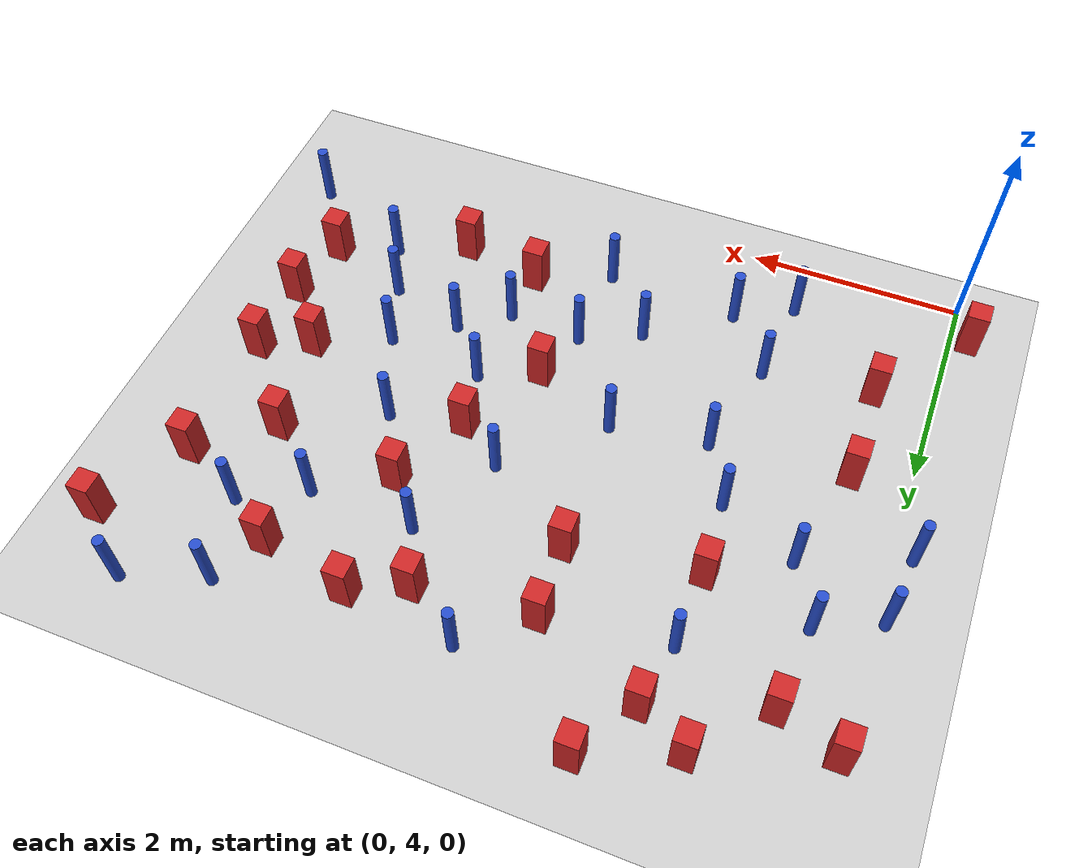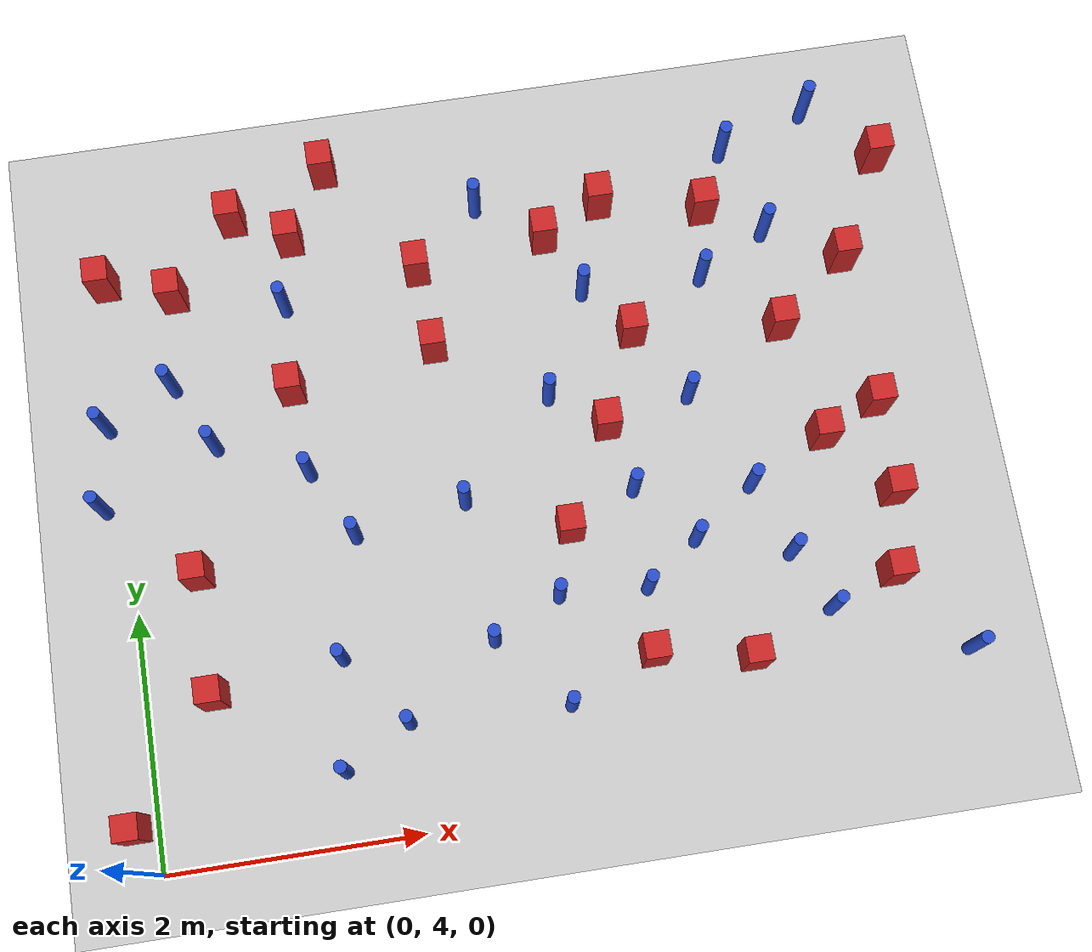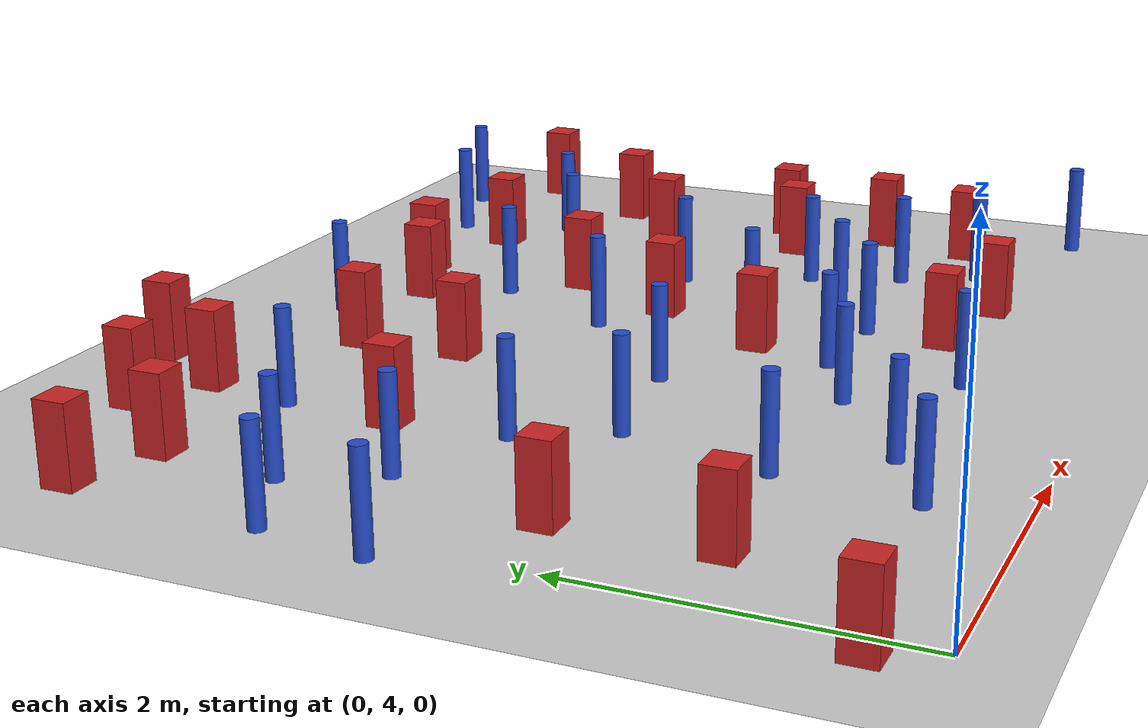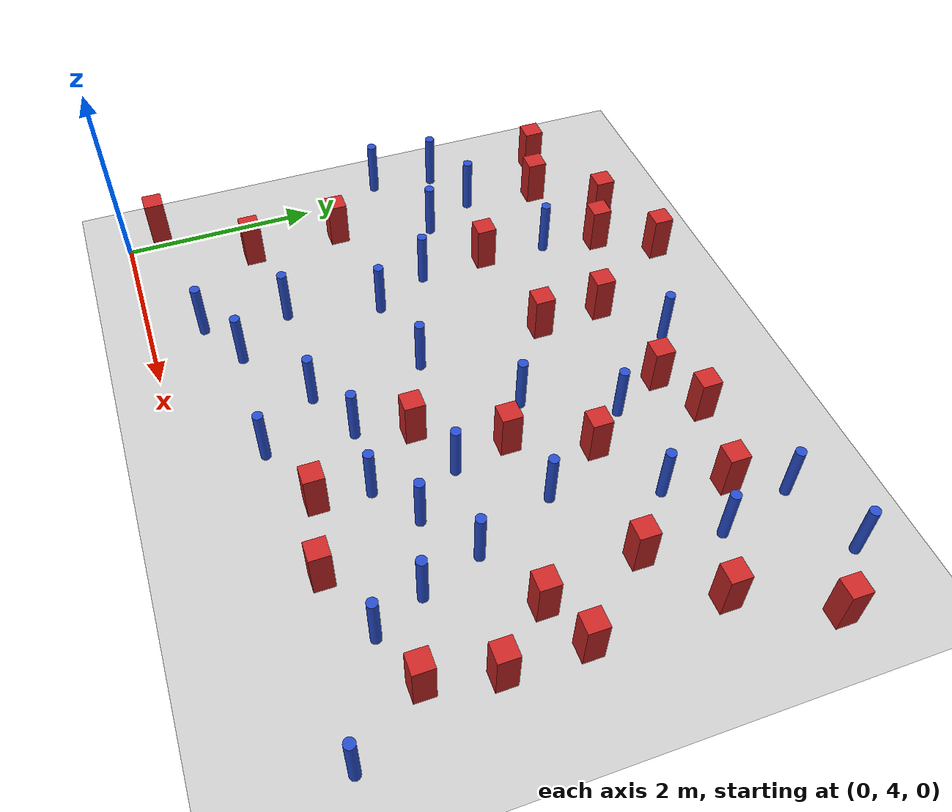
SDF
<sdf version="1.6">
 <world name="default">
  <model name="ground_plane">
   <static>1</static>
   <link name="link">
    <collision name="collision">
     <geometry><plane><normal>0 0 1</normal><size>100 100</size></plane></geometry>
     <surface><friction><ode><mu>100</mu><mu2>50</mu2></ode></friction></surface>
    </collision>
    <visual name="visual">
     <cast_shadows>0</cast_shadows>
     <geometry><plane><normal>0 0 1</normal><size>100 100</size></plane></geometry>
     <material>
      <ambient>1.0 1.0 1.0 1.0</ambient>
      <diffuse>0.8 0.8 0.8 1.0</diffuse>
      <specular>0.01 0.01 0.01 1.000000</specular>
     </material>
    </visual>
   </link>
  </model>
  <model name="pole_obstacle0">
   <static>true</static>
   <pose>5.38879839555 8.36669542254 7.38925637345e-09 -8.471706928e-08 1.24976765081e-08 -1.74513093015e-07</pose>
   <link name="link">
    <pose>0 0 0.3 0 -0 0</pose>
    <inertial>
     <mass>1</mass>
     <inertia><ixx>0.145833</ixx><ixy>0</ixy><ixz>0</ixz><iyy>0.145833</iyy><iyz>0</iyz><izz>0.125</izz></inertia>
    </inertial>
    <collision name="collision">
     <geometry><cylinder><radius>0.05</radius><length>.6</length></cylinder></geometry>
    </collision>
    <visual name="visual">
     <geometry><cylinder><radius>0.05</radius><length>.6</length></cylinder></geometry>
     <material>
      <script><name>Gazebo/Blue</name><uri>file://media/materials/scripts/gazebo.material</uri></script>
     </material>
    </visual>
   </link>
  </model>
  <model name="square_post_obstacle2">
   <static>true</static>
   <pose>0.536799220432 5.27281515799 1.91545236811e-07 -7.35059704564e-06 1.12565212e-07 2.39332434364e-05</pose>
   <link name="link">
    <pose>0 0 0.25 0 -0 0</pose>
    <inertial>
     <mass>100</mass>
     <inertia>
      <ixx>0.166667</ixx>
      <ixy>0</ixy>
      <ixz>0</ixz>
      <iyy>0.166667</iyy>
      <iyz>0</iyz>
      <izz>0.166667</izz>
     </inertia>
    </inertial>
    <collision name="collision"><geometry><box><size>.2 .2 .5</size></box></geometry></collision>
    <visual name="visual">
     <geometry><box><size>.2 .2 .5</size></box></geometry>
     <material>
      <script><name>Gazebo/Red</name><uri>file://media/materials/scripts/gazebo.material</uri></script>
     </material>
    </visual>
   </link>
  </model>
  <model name="pole_obstacle6">
   <static>true</static>
   <pose>4.54309305607 7.07931227956 7.38925637345e-09 -8.47170692796e-08 1.24976764786e-08 -1.74513093032e-07</pose>
   <link name="link">
    <pose>0 0 0.3 0 -0 0</pose>
    <inertial>
     <mass>1</mass>
     <inertia><ixx>0.145833</ixx><ixy>0</ixy><ixz>0</ixz><iyy>0.145833</iyy><iyz>0</iyz><izz>0.125</izz></inertia>
    </inertial>
    <collision name="collision">
     <geometry><cylinder><radius>0.05</radius><length>.6</length></cylinder></geometry>
    </collision>
    <visual name="visual">
     <geometry><cylinder><radius>0.05</radius><length>.6</length></cylinder></geometry>
     <material>
      <script><name>Gazebo/Blue</name><uri>file://media/materials/scripts/gazebo.material</uri></script>
     </material>
    </visual>
   </link>
  </model>
  <model name="pole_obstacle16">
   <static>true</static>
   <pose>2.65486659506 6.48654705687 7.38925637345e-09 -8.47170692798e-08 1.24976765033e-08 -1.74513093019e-07</pose>
   <link name="link">
    <pose>0 0 0.3 0 -0 0</pose>
    <inertial>
     <mass>1</mass>
     <inertia><ixx>0.145833</ixx><ixy>0</ixy><ixz>0</ixz><iyy>0.145833</iyy><iyz>0</iyz><izz>0.125</izz></inertia>
    </inertial>
    <collision name="collision">
     <geometry><cylinder><radius>0.05</radius><length>.6</length></cylinder></geometry>
    </collision>
    <visual name="visual">
     <geometry><cylinder><radius>0.05</radius><length>.6</length></cylinder></geometry>
     <material>
      <script><name>Gazebo/Blue</name><uri>file://media/materials/scripts/gazebo.material</uri></script>
     </material>
    </visual>
   </link>
  </model>
  <model name="pole_obstacle27">
   <static>true</static>
   <pose>1.54337196194 5.40097151856 7.38925637345e-09 -8.47170692799e-08 1.24976765033e-08 -1.74513093018e-07</pose>
   <link name="link">
    <pose>0 0 0.3 0 -0 0</pose>
    <inertial>
     <mass>1</mass>
     <inertia><ixx>0.145833</ixx><ixy>0</ixy><ixz>0</ixz><iyy>0.145833</iyy><iyz>0</iyz><izz>0.125</izz></inertia>
    </inertial>
    <collision name="collision">
     <geometry><cylinder><radius>0.05</radius><length>.6</length></cylinder></geometry>
    </collision>
    <visual name="visual">
     <geometry><cylinder><radius>0.05</radius><length>.6</length></cylinder></geometry>
     <material>
      <script><name>Gazebo/Blue</name><uri>file://media/materials/scripts/gazebo.material</uri></script>
     </material>
    </visual>
   </link>
  </model>
  <model name="square_post_obstacle33">
   <static>true</static>
   <pose>1.1004594954 9.1304392188 1.91545236811e-07 -7.35059704564e-06 1.12565212e-07 2.39332434364e-05</pose>
   <link name="link">
    <pose>0 0 0.25 0 -0 0</pose>
    <inertial>
     <mass>100</mass>
     <inertia>
      <ixx>0.166667</ixx>
      <ixy>0</ixy>
      <ixz>0</ixz>
      <iyy>0.166667</iyy>
      <iyz>0</iyz>
      <izz>0.166667</izz>
     </inertia>
    </inertial>
    <collision name="collision"><geometry><box><size>.2 .2 .5</size></box></geometry></collision>
    <visual name="visual">
     <geometry><box><size>.2 .2 .5</size></box></geometry>
     <material>
      <script><name>Gazebo/Red</name><uri>file://media/materials/scripts/gazebo.material</uri></script>
     </material>
    </visual>
   </link>
  </model>
  <model name="pole_obstacle30">
   <static>true</static>
   <pose>3.96328516001 5.59237756743 7.38925637345e-09 -8.47170692798e-08 1.24976764915e-08 -1.74513093026e-07</pose>
   <link name="link">
    <pose>0 0 0.3 0 -0 0</pose>
    <inertial>
     <mass>1</mass>
     <inertia><ixx>0.145833</ixx><ixy>0</ixy><ixz>0</ixz><iyy>0.145833</iyy><iyz>0</iyz><izz>0.125</izz></inertia>
    </inertial>
    <collision name="collision">
     <geometry><cylinder><radius>0.05</radius><length>.6</length></cylinder></geometry>
    </collision>
    <visual name="visual">
     <geometry><cylinder><radius>0.05</radius><length>.6</length></cylinder></geometry>
     <material>
      <script><name>Gazebo/Blue</name><uri>file://media/materials/scripts/gazebo.material</uri></script>
     </material>
    </visual>
   </link>
  </model>
  <model name="pole_obstacle35">
   <static>true</static>
   <pose>5.34245085465 5.2171930424 7.38925637345e-09 -8.47170692796e-08 1.24976764786e-08 -1.74513093032e-07</pose>
   <link name="link">
    <pose>0 0 0.3 0 -0 0</pose>
    <inertial>
     <mass>1</mass>
     <inertia><ixx>0.145833</ixx><ixy>0</ixy><ixz>0</ixz><iyy>0.145833</iyy><iyz>0</iyz><izz>0.125</izz></inertia>
    </inertial>
    <collision name="collision">
     <geometry><cylinder><radius>0.05</radius><length>.6</length></cylinder></geometry>
    </collision>
    <visual name="visual">
     <geometry><cylinder><radius>0.05</radius><length>.6</length></cylinder></geometry>
     <material>
      <script><name>Gazebo/Blue</name><uri>file://media/materials/scripts/gazebo.material</uri></script>
     </material>
    </visual>
   </link>
  </model>
  <model name="square_post_obstacle37">
   <static>true</static>
   <pose>6.41477944838 8.88996979228 1.91545236811e-07 -7.35059704564e-06 1.12565212e-07 2.39332434364e-05</pose>
   <link name="link">
    <pose>0 0 0.25 0 -0 0</pose>
    <inertial>
     <mass>100</mass>
     <inertia>
      <ixx>0.166667</ixx>
      <ixy>0</ixy>
      <ixz>0</ixz>
      <iyy>0.166667</iyy>
      <iyz>0</iyz>
      <izz>0.166667</izz>
     </inertia>
    </inertial>
    <collision name="collision"><geometry><box><size>.2 .2 .5</size></box></geometry></collision>
    <visual name="visual">
     <geometry><box><size>.2 .2 .5</size></box></geometry>
     <material>
      <script><name>Gazebo/Red</name><uri>file://media/materials/scripts/gazebo.material</uri></script>
     </material>
    </visual>
   </link>
  </model>
  <model name="pole_obstacle38">
   <static>true</static>
   <pose>1.98644280753 4.83673088057 7.38925637345e-09 -8.471706928e-08 1.24976765202e-08 -1.7451309301e-07</pose>
   <link name="link">
    <pose>0 0 0.3 0 -0 0</pose>
    <inertial>
     <mass>1</mass>
     <inertia><ixx>0.145833</ixx><ixy>0</ixy><ixz>0</ixz><iyy>0.145833</iyy><iyz>0</iyz><izz>0.125</izz></inertia>
    </inertial>
    <collision name="collision">
     <geometry><cylinder><radius>0.05</radius><length>.6</length></cylinder></geometry>
    </collision>
    <visual name="visual">
     <geometry><cylinder><radius>0.05</radius><length>.6</length></cylinder></geometry>
     <material>
      <script><name>Gazebo/Blue</name><uri>file://media/materials/scripts/gazebo.material</uri></script>
     </material>
    </visual>
   </link>
  </model>
  <model name="square_post_obstacle38">
   <static>true</static>
   <pose>1.41443566055 7.61321873721 1.91545236811e-07 -7.35059704564e-06 1.12565212e-07 2.39332434364e-05</pose>
   <link name="link">
    <pose>0 0 0.25 0 -0 0</pose>
    <inertial>
     <mass>100</mass>
     <inertia>
      <ixx>0.166667</ixx>
      <ixy>0</ixy>
      <ixz>0</ixz>
      <iyy>0.166667</iyy>
      <iyz>0</iyz>
      <izz>0.166667</izz>
     </inertia>
    </inertial>
    <collision name="collision"><geometry><box><size>.2 .2 .5</size></box></geometry></collision>
    <visual name="visual">
     <geometry><box><size>.2 .2 .5</size></box></geometry>
     <material>
      <script><name>Gazebo/Red</name><uri>file://media/materials/scripts/gazebo.material</uri></script>
     </material>
    </visual>
   </link>
  </model>
  <model name="square_post_obstacle47">
   <static>true</static>
   <pose>0.0110091717661 8.7246706072 1.91545236811e-07 -7.35059704564e-06 1.12565212e-07 2.39332434364e-05</pose>
   <link name="link">
    <pose>0 0 0.25 0 -0 0</pose>
    <inertial>
     <mass>100</mass>
     <inertia>
      <ixx>0.166667</ixx>
      <ixy>0</ixy>
      <ixz>0</ixz>
      <iyy>0.166667</iyy>
      <iyz>0</iyz>
      <izz>0.166667</izz>
     </inertia>
    </inertial>
    <collision name="collision"><geometry><box><size>.2 .2 .5</size></box></geometry></collision>
    <visual name="visual">
     <geometry><box><size>.2 .2 .5</size></box></geometry>
     <material>
      <script><name>Gazebo/Red</name><uri>file://media/materials/scripts/gazebo.material</uri></script>
     </material>
    </visual>
   </link>
  </model>
  <model name="pole_obstacle48">
   <static>true</static>
   <pose>3.23181660423 4.78495591105 7.38925637345e-09 -8.47170692798e-08 1.24976765033e-08 -1.74513093019e-07</pose>
   <link name="link">
    <pose>0 0 0.3 0 -0 0</pose>
    <inertial>
     <mass>1</mass>
     <inertia><ixx>0.145833</ixx><ixy>0</ixy><ixz>0</ixz><iyy>0.145833</iyy><iyz>0</iyz><izz>0.125</izz></inertia>
    </inertial>
    <collision name="collision">
     <geometry><cylinder><radius>0.05</radius><length>.6</length></cylinder></geometry>
    </collision>
    <visual name="visual">
     <geometry><cylinder><radius>0.05</radius><length>.6</length></cylinder></geometry>
     <material>
      <script><name>Gazebo/Blue</name><uri>file://media/materials/scripts/gazebo.material</uri></script>
     </material>
    </visual>
   </link>
  </model>
  <model name="pole_obstacle49">
   <static>true</static>
   <pose>4.90130664667 6.2775078345 7.38925637345e-09 -8.47170692796e-08 1.24976764786e-08 -1.74513093032e-07</pose>
   <link name="link">
    <pose>0 0 0.3 0 -0 0</pose>
    <inertial>
     <mass>1</mass>
     <inertia><ixx>0.145833</ixx><ixy>0</ixy><ixz>0</ixz><iyy>0.145833</iyy><iyz>0</iyz><izz>0.125</izz></inertia>
    </inertial>
    <collision name="collision">
     <geometry><cylinder><radius>0.05</radius><length>.6</length></cylinder></geometry>
    </collision>
    <visual name="visual">
     <geometry><cylinder><radius>0.05</radius><length>.6</length></cylinder></geometry>
     <material>
      <script><name>Gazebo/Blue</name><uri>file://media/materials/scripts/gazebo.material</uri></script>
     </material>
    </visual>
   </link>
  </model>
  <model name="square_post_obstacle49">
   <static>true</static>
   <pose>4.18138463505 7.68231442433 1.91545236811e-07 -7.35059704564e-06 1.12565212e-07 2.39332434364e-05</pose>
   <link name="link">
    <pose>0 0 0.25 0 -0 0</pose>
    <inertial>
     <mass>100</mass>
     <inertia>
      <ixx>0.166667</ixx>
      <ixy>0</ixy>
      <ixz>0</ixz>
      <iyy>0.166667</iyy>
      <iyz>0</iyz>
      <izz>0.166667</izz>
     </inertia>
    </inertial>
    <collision name="collision"><geometry><box><size>.2 .2 .5</size></box></geometry></collision>
    <visual name="visual">
     <geometry><box><size>.2 .2 .5</size></box></geometry>
     <material>
      <script><name>Gazebo/Red</name><uri>file://media/materials/scripts/gazebo.material</uri></script>
     </material>
    </visual>
   </link>
  </model>
  <model name="pole_obstacle53">
   <static>true</static>
   <pose>2.72183247384 5.36527266754 7.38925637345e-09 -8.47170692798e-08 1.24976765033e-08 -1.74513093019e-07</pose>
   <link name="link">
    <pose>0 0 0.3 0 -0 0</pose>
    <inertial>
     <mass>1</mass>
     <inertia><ixx>0.145833</ixx><ixy>0</ixy><ixz>0</ixz><iyy>0.145833</iyy><iyz>0</iyz><izz>0.125</izz></inertia>
    </inertial>
    <collision name="collision">
     <geometry><cylinder><radius>0.05</radius><length>.6</length></cylinder></geometry>
    </collision>
    <visual name="visual">
     <geometry><cylinder><radius>0.05</radius><length>.6</length></cylinder></geometry>
     <material>
      <script><name>Gazebo/Blue</name><uri>file://media/materials/scripts/gazebo.material</uri></script>
     </material>
    </visual>
   </link>
  </model>
  <model name="square_post_obstacle58">
   <static>true</static>
   <pose>3.60351716718 8.5957478818 1.91545236811e-07 -7.35059704564e-06 1.12565212e-07 2.39332434364e-05</pose>
   <link name="link">
    <pose>0 0 0.25 0 -0 0</pose>
    <inertial>
     <mass>100</mass>
     <inertia>
      <ixx>0.166667</ixx>
      <ixy>0</ixy>
      <ixz>0</ixz>
      <iyy>0.166667</iyy>
      <iyz>0</iyz>
      <izz>0.166667</izz>
     </inertia>
    </inertial>
    <collision name="collision"><geometry><box><size>.2 .2 .5</size></box></geometry></collision>
    <visual name="visual">
     <geometry><box><size>.2 .2 .5</size></box></geometry>
     <material>
      <script><name>Gazebo/Red</name><uri>file://media/materials/scripts/gazebo.material</uri></script>
     </material>
    </visual>
   </link>
  </model>
  <model name="pole_obstacle58">
   <static>true</static>
   <pose>5.17714366487 9.11898467634 7.38925637345e-09 -8.471706928e-08 1.24976765081e-08 -1.74513093015e-07</pose>
   <link name="link">
    <pose>0 0 0.3 0 -0 0</pose>
    <inertial>
     <mass>1</mass>
     <inertia><ixx>0.145833</ixx><ixy>0</ixy><ixz>0</ixz><iyy>0.145833</iyy><iyz>0</iyz><izz>0.125</izz></inertia>
    </inertial>
    <collision name="collision">
     <geometry><cylinder><radius>0.05</radius><length>.6</length></cylinder></geometry>
    </collision>
    <visual name="visual">
     <geometry><cylinder><radius>0.05</radius><length>.6</length></cylinder></geometry>
     <material>
      <script><name>Gazebo/Blue</name><uri>file://media/materials/scripts/gazebo.material</uri></script>
     </material>
    </visual>
   </link>
  </model>
  <model name="square_post_obstacle62">
   <static>true</static>
   <pose>2.5420085227 8.47117893151 1.91545236811e-07 -7.35059704564e-06 1.12565212e-07 2.39332434364e-05</pose>
   <link name="link">
    <pose>0 0 0.25 0 -0 0</pose>
    <inertial>
     <mass>100</mass>
     <inertia>
      <ixx>0.166667</ixx>
      <ixy>0</ixy>
      <ixz>0</ixz>
      <iyy>0.166667</iyy>
      <iyz>0</iyz>
      <izz>0.166667</izz>
     </inertia>
    </inertial>
    <collision name="collision"><geometry><box><size>.2 .2 .5</size></box></geometry></collision>
    <visual name="visual">
     <geometry><box><size>.2 .2 .5</size></box></geometry>
     <material>
      <script><name>Gazebo/Red</name><uri>file://media/materials/scripts/gazebo.material</uri></script>
     </material>
    </visual>
   </link>
  </model>
  <model name="pole_obstacle61">
   <static>true</static>
   <pose>1.44120581217 8.30787787056 7.38925637345e-09 -8.47170692798e-08 1.24976764881e-08 -1.74513093027e-07</pose>
   <link name="link">
    <pose>0 0 0.3 0 -0 0</pose>
    <inertial>
     <mass>1</mass>
     <inertia><ixx>0.145833</ixx><ixy>0</ixy><ixz>0</ixz><iyy>0.145833</iyy><iyz>0</iyz><izz>0.125</izz></inertia>
    </inertial>
    <collision name="collision">
     <geometry><cylinder><radius>0.05</radius><length>.6</length></cylinder></geometry>
    </collision>
    <visual name="visual">
     <geometry><cylinder><radius>0.05</radius><length>.6</length></cylinder></geometry>
     <material>
      <script><name>Gazebo/Blue</name><uri>file://media/materials/scripts/gazebo.material</uri></script>
     </material>
    </visual>
   </link>
  </model>
  <model name="square_post_obstacle65">
   <static>true</static>
   <pose>2.58540721505 7.79565693337 1.91545236811e-07 -7.35059704564e-06 1.12565212e-07 2.39332434364e-05</pose>
   <link name="link">
    <pose>0 0 0.25 0 -0 0</pose>
    <inertial>
     <mass>100</mass>
     <inertia>
      <ixx>0.166667</ixx>
      <ixy>0</ixy>
      <ixz>0</ixz>
      <iyy>0.166667</iyy>
      <iyz>0</iyz>
      <izz>0.166667</izz>
     </inertia>
    </inertial>
    <collision name="collision"><geometry><box><size>.2 .2 .5</size></box></geometry></collision>
    <visual name="visual">
     <geometry><box><size>.2 .2 .5</size></box></geometry>
     <material>
      <script><name>Gazebo/Red</name><uri>file://media/materials/scripts/gazebo.material</uri></script>
     </material>
    </visual>
   </link>
  </model>
  <model name="pole_obstacle65">
   <static>true</static>
   <pose>-0.161952074228 6.84530537255 7.38925637345e-09 -8.47170692799e-08 1.24976765043e-08 -1.74513093019e-07</pose>
   <link name="link">
    <pose>0 0 0.3 0 -0 0</pose>
    <inertial>
     <mass>1</mass>
     <inertia><ixx>0.145833</ixx><ixy>0</ixy><ixz>0</ixz><iyy>0.145833</iyy><iyz>0</iyz><izz>0.125</izz></inertia>
    </inertial>
    <collision name="collision">
     <geometry><cylinder><radius>0.05</radius><length>.6</length></cylinder></geometry>
    </collision>
    <visual name="visual">
     <geometry><cylinder><radius>0.05</radius><length>.6</length></cylinder></geometry>
     <material>
      <script><name>Gazebo/Blue</name><uri>file://media/materials/scripts/gazebo.material</uri></script>
     </material>
    </visual>
   </link>
  </model>
  <model name="pole_obstacle66">
   <static>true</static>
   <pose>0.758773156314 7.2256268469 7.38925637345e-09 -8.471706928e-08 1.24976765086e-08 -1.74513093015e-07</pose>
   <link name="link">
    <pose>0 0 0.3 0 -0 0</pose>
    <inertial>
     <mass>1</mass>
     <inertia><ixx>0.145833</ixx><ixy>0</ixy><ixz>0</ixz><iyy>0.145833</iyy><iyz>0</iyz><izz>0.125</izz></inertia>
    </inertial>
    <collision name="collision">
     <geometry><cylinder><radius>0.05</radius><length>.6</length></cylinder></geometry>
    </collision>
    <visual name="visual">
     <geometry><cylinder><radius>0.05</radius><length>.6</length></cylinder></geometry>
     <material>
      <script><name>Gazebo/Blue</name><uri>file://media/materials/scripts/gazebo.material</uri></script>
     </material>
    </visual>
   </link>
  </model>
  <model name="square_post_obstacle75">
   <static>true</static>
   <pose>5.87247760209 5.428976696 1.91545236811e-07 -7.35059704564e-06 1.12565212e-07 2.39332434364e-05</pose>
   <link name="link">
    <pose>0 0 0.25 0 -0 0</pose>
    <inertial>
     <mass>100</mass>
     <inertia>
      <ixx>0.166667</ixx>
      <ixy>0</ixy>
      <ixz>0</ixz>
      <iyy>0.166667</iyy>
      <iyz>0</iyz>
      <izz>0.166667</izz>
     </inertia>
    </inertial>
    <collision name="collision"><geometry><box><size>.2 .2 .5</size></box></geometry></collision>
    <visual name="visual">
     <geometry><box><size>.2 .2 .5</size></box></geometry>
     <material>
      <script><name>Gazebo/Red</name><uri>file://media/materials/scripts/gazebo.material</uri></script>
     </material>
    </visual>
   </link>
  </model>
  <model name="pole_obstacle82">
   <static>true</static>
   <pose>3.98117430681 6.3852932254 7.38925637345e-09 -8.47170692798e-08 1.24976764915e-08 -1.74513093026e-07</pose>
   <link name="link">
    <pose>0 0 0.3 0 -0 0</pose>
    <inertial>
     <mass>1</mass>
     <inertia><ixx>0.145833</ixx><ixy>0</ixy><ixz>0</ixz><iyy>0.145833</iyy><iyz>0</iyz><izz>0.125</izz></inertia>
    </inertial>
    <collision name="collision">
     <geometry><cylinder><radius>0.05</radius><length>.6</length></cylinder></geometry>
    </collision>
    <visual name="visual">
     <geometry><cylinder><radius>0.05</radius><length>.6</length></cylinder></geometry>
     <material>
      <script><name>Gazebo/Blue</name><uri>file://media/materials/scripts/gazebo.material</uri></script>
     </material>
    </visual>
   </link>
  </model>
  <model name="pole_obstacle84">
   <static>true</static>
   <pose>3.08896477385 8.93891303512 7.38925637345e-09 -8.47170692793e-08 1.24976764408e-08 -1.74513093041e-07</pose>
   <link name="link">
    <pose>0 0 0.3 0 -0 0</pose>
    <inertial>
     <mass>1</mass>
     <inertia><ixx>0.145833</ixx><ixy>0</ixy><ixz>0</ixz><iyy>0.145833</iyy><iyz>0</iyz><izz>0.125</izz></inertia>
    </inertial>
    <collision name="collision">
     <geometry><cylinder><radius>0.05</radius><length>.6</length></cylinder></geometry>
    </collision>
    <visual name="visual">
     <geometry><cylinder><radius>0.05</radius><length>.6</length></cylinder></geometry>
     <material>
      <script><name>Gazebo/Blue</name><uri>file://media/materials/scripts/gazebo.material</uri></script>
     </material>
    </visual>
   </link>
  </model>
  <model name="pole_obstacle94">
   <static>true</static>
   <pose>4.39530376754 5.9116258459 7.38925637345e-09 -8.47170692796e-08 1.24976764786e-08 -1.74513093032e-07</pose>
   <link name="link">
    <pose>0 0 0.3 0 -0 0</pose>
    <inertial>
     <mass>1</mass>
     <inertia><ixx>0.145833</ixx><ixy>0</ixy><ixz>0</ixz><iyy>0.145833</iyy><iyz>0</iyz><izz>0.125</izz></inertia>
    </inertial>
    <collision name="collision">
     <geometry><cylinder><radius>0.05</radius><length>.6</length></cylinder></geometry>
    </collision>
    <visual name="visual">
     <geometry><cylinder><radius>0.05</radius><length>.6</length></cylinder></geometry>
     <material>
      <script><name>Gazebo/Blue</name><uri>file://media/materials/scripts/gazebo.material</uri></script>
     </material>
    </visual>
   </link>
  </model>
  <model name="pole_obstacle97">
   <static>true</static>
   <pose>3.26965174614 5.63186402851 7.38925637345e-09 -8.47170692798e-08 1.24976765033e-08 -1.74513093019e-07</pose>
   <link name="link">
    <pose>0 0 0.3 0 -0 0</pose>
    <inertial>
     <mass>1</mass>
     <inertia><ixx>0.145833</ixx><ixy>0</ixy><ixz>0</ixz><iyy>0.145833</iyy><iyz>0</iyz><izz>0.125</izz></inertia>
    </inertial>
    <collision name="collision">
     <geometry><cylinder><radius>0.05</radius><length>.6</length></cylinder></geometry>
    </collision>
    <visual name="visual">
     <geometry><cylinder><radius>0.05</radius><length>.6</length></cylinder></geometry>
     <material>
      <script><name>Gazebo/Blue</name><uri>file://media/materials/scripts/gazebo.material</uri></script>
     </material>
    </visual>
   </link>
  </model>
  <model name="pole_obstacle99">
   <static>true</static>
   <pose>-0.0767213638143 7.5057592026 7.38925637345e-09 -8.47170692799e-08 1.24976765047e-08 -1.74513093018e-07</pose>
   <link name="link">
    <pose>0 0 0.3 0 -0 0</pose>
    <inertial>
     <mass>1</mass>
     <inertia><ixx>0.145833</ixx><ixy>0</ixy><ixz>0</ixz><iyy>0.145833</iyy><iyz>0</iyz><izz>0.125</izz></inertia>
    </inertial>
    <collision name="collision">
     <geometry><cylinder><radius>0.05</radius><length>.6</length></cylinder></geometry>
    </collision>
    <visual name="visual">
     <geometry><cylinder><radius>0.05</radius><length>.6</length></cylinder></geometry>
     <material>
      <script><name>Gazebo/Blue</name><uri>file://media/materials/scripts/gazebo.material</uri></script>
     </material>
    </visual>
   </link>
  </model>
  <model name="square_post_obstacle90">
   <static>true</static>
   <pose>1.89212309256 9.4477759502 1.91545236811e-07 -7.35059704564e-06 1.12565212e-07 2.39332434364e-05</pose>
   <link name="link">
    <pose>0 0 0.25 0 -0 0</pose>
    <inertial>
     <mass>100</mass>
     <inertia>
      <ixx>0.166667</ixx>
      <ixy>0</ixy>
      <ixz>0</ixz>
      <iyy>0.166667</iyy>
      <iyz>0</iyz>
      <izz>0.166667</izz>
     </inertia>
    </inertial>
    <collision name="collision"><geometry><box><size>.2 .2 .5</size></box></geometry></collision>
    <visual name="visual">
     <geometry><box><size>.2 .2 .5</size></box></geometry>
     <material>
      <script><name>Gazebo/Red</name><uri>file://media/materials/scripts/gazebo.material</uri></script>
     </material>
    </visual>
   </link>
  </model>
  <model name="pole_obstacle104">
   <static>true</static>
   <pose>1.76484448761 6.3440490695 7.38925637345e-09 -8.47170692799e-08 1.24976765033e-08 -1.74513093018e-07</pose>
   <link name="link">
    <pose>0 0 0.3 0 -0 0</pose>
    <inertial>
     <mass>1</mass>
     <inertia><ixx>0.145833</ixx><ixy>0</ixy><ixz>0</ixz><iyy>0.145833</iyy><iyz>0</iyz><izz>0.125</izz></inertia>
    </inertial>
    <collision name="collision">
     <geometry><cylinder><radius>0.05</radius><length>.6</length></cylinder></geometry>
    </collision>
    <visual name="visual">
     <geometry><cylinder><radius>0.05</radius><length>.6</length></cylinder></geometry>
     <material>
      <script><name>Gazebo/Blue</name><uri>file://media/materials/scripts/gazebo.material</uri></script>
     </material>
    </visual>
   </link>
  </model>
  <model name="pole_obstacle116">
   <static>true</static>
   <pose>5.91081352548 9.36799034811 7.38925637345e-09 -8.471706928e-08 1.24976765081e-08 -1.74513093015e-07</pose>
   <link name="link">
    <pose>0 0 0.3 0 -0 0</pose>
    <inertial>
     <mass>1</mass>
     <inertia><ixx>0.145833</ixx><ixy>0</ixy><ixz>0</ixz><iyy>0.145833</iyy><iyz>0</iyz><izz>0.125</izz></inertia>
    </inertial>
    <collision name="collision">
     <geometry><cylinder><radius>0.05</radius><length>.6</length></cylinder></geometry>
    </collision>
    <visual name="visual">
     <geometry><cylinder><radius>0.05</radius><length>.6</length></cylinder></geometry>
     <material>
      <script><name>Gazebo/Blue</name><uri>file://media/materials/scripts/gazebo.material</uri></script>
     </material>
    </visual>
   </link>
  </model>
  <model name="square_post_obstacle113">
   <static>true</static>
   <pose>1.5477226511 8.88657351805 1.91545236811e-07 -7.35059704564e-06 1.12565212e-07 2.39332434364e-05</pose>
   <link name="link">
    <pose>0 0 0.25 0 -0 0</pose>
    <inertial>
     <mass>100</mass>
     <inertia>
      <ixx>0.166667</ixx>
      <ixy>0</ixy>
      <ixz>0</ixz>
      <iyy>0.166667</iyy>
      <iyz>0</iyz>
      <izz>0.166667</izz>
     </inertia>
    </inertial>
    <collision name="collision"><geometry><box><size>.2 .2 .5</size></box></geometry></collision>
    <visual name="visual">
     <geometry><box><size>.2 .2 .5</size></box></geometry>
     <material>
      <script><name>Gazebo/Red</name><uri>file://media/materials/scripts/gazebo.material</uri></script>
     </material>
    </visual>
   </link>
  </model>
  <model name="pole_obstacle130">
   <static>true</static>
   <pose>6.34636134842 4.75340261393 7.38925637345e-09 -8.47170692796e-08 1.24976764786e-08 -1.74513093032e-07</pose>
   <link name="link">
    <pose>0 0 0.3 0 -0 0</pose>
    <inertial>
     <mass>1</mass>
     <inertia><ixx>0.145833</ixx><ixy>0</ixy><ixz>0</ixz><iyy>0.145833</iyy><iyz>0</iyz><izz>0.125</izz></inertia>
    </inertial>
    <collision name="collision">
     <geometry><cylinder><radius>0.05</radius><length>.6</length></cylinder></geometry>
    </collision>
    <visual name="visual">
     <geometry><cylinder><radius>0.05</radius><length>.6</length></cylinder></geometry>
     <material>
      <script><name>Gazebo/Blue</name><uri>file://media/materials/scripts/gazebo.material</uri></script>
     </material>
    </visual>
   </link>
  </model>
  <model name="square_post_obstacle117">
   <static>true</static>
   <pose>3.91656311781 5.08801730312 1.91545236811e-07 -7.35059704564e-06 1.12565212e-07 2.39332434364e-05</pose>
   <link name="link">
    <pose>0 0 0.25 0 -0 0</pose>
    <inertial>
     <mass>100</mass>
     <inertia>
      <ixx>0.166667</ixx>
      <ixy>0</ixy>
      <ixz>0</ixz>
      <iyy>0.166667</iyy>
      <iyz>0</iyz>
      <izz>0.166667</izz>
     </inertia>
    </inertial>
    <collision name="collision"><geometry><box><size>.2 .2 .5</size></box></geometry></collision>
    <visual name="visual">
     <geometry><box><size>.2 .2 .5</size></box></geometry>
     <material>
      <script><name>Gazebo/Red</name><uri>file://media/materials/scripts/gazebo.material</uri></script>
     </material>
    </visual>
   </link>
  </model>
  <model name="square_post_obstacle129">
   <static>true</static>
   <pose>0.519232255106 6.22443608551 1.91545236811e-07 -7.35059704564e-06 1.12565212e-07 2.39332434364e-05</pose>
   <link name="link">
    <pose>0 0 0.25 0 -0 0</pose>
    <inertial>
     <mass>100</mass>
     <inertia>
      <ixx>0.166667</ixx>
      <ixy>0</ixy>
      <ixz>0</ixz>
      <iyy>0.166667</iyy>
      <iyz>0</iyz>
      <izz>0.166667</izz>
     </inertia>
    </inertial>
    <collision name="collision"><geometry><box><size>.2 .2 .5</size></box></geometry></collision>
    <visual name="visual">
     <geometry><box><size>.2 .2 .5</size></box></geometry>
     <material>
      <script><name>Gazebo/Red</name><uri>file://media/materials/scripts/gazebo.material</uri></script>
     </material>
    </visual>
   </link>
  </model>
  <model name="square_post_obstacle133">
   <static>true</static>
   <pose>5.97978423858 8.06069949687 1.91545236811e-07 -7.35059704564e-06 1.12565212e-07 2.39332434364e-05</pose>
   <link name="link">
    <pose>0 0 0.25 0 -0 0</pose>
    <inertial>
     <mass>100</mass>
     <inertia>
      <ixx>0.166667</ixx>
      <ixy>0</ixy>
      <ixz>0</ixz>
      <iyy>0.166667</iyy>
      <iyz>0</iyz>
      <izz>0.166667</izz>
     </inertia>
    </inertial>
    <collision name="collision"><geometry><box><size>.2 .2 .5</size></box></geometry></collision>
    <visual name="visual">
     <geometry><box><size>.2 .2 .5</size></box></geometry>
     <material>
      <script><name>Gazebo/Red</name><uri>file://media/materials/scripts/gazebo.material</uri></script>
     </material>
    </visual>
   </link>
  </model>
  <model name="pole_obstacle146">
   <static>true</static>
   <pose>3.43795092327 7.23862306587 7.38925637345e-09 -8.47170692798e-08 1.24976765033e-08 -1.74513093019e-07</pose>
   <link name="link">
    <pose>0 0 0.3 0 -0 0</pose>
    <inertial>
     <mass>1</mass>
     <inertia><ixx>0.145833</ixx><ixy>0</ixy><ixz>0</ixz><iyy>0.145833</iyy><iyz>0</iyz><izz>0.125</izz></inertia>
    </inertial>
    <collision name="collision">
     <geometry><cylinder><radius>0.05</radius><length>.6</length></cylinder></geometry>
    </collision>
    <visual name="visual">
     <geometry><cylinder><radius>0.05</radius><length>.6</length></cylinder></geometry>
     <material>
      <script><name>Gazebo/Blue</name><uri>file://media/materials/scripts/gazebo.material</uri></script>
     </material>
    </visual>
   </link>
  </model>
  <model name="square_post_obstacle138">
   <static>true</static>
   <pose>3.43550213384 6.15434163975 1.91545236811e-07 -7.35059704564e-06 1.12565212e-07 2.39332434364e-05</pose>
   <link name="link">
    <pose>0 0 0.25 0 -0 0</pose>
    <inertial>
     <mass>100</mass>
     <inertia>
      <ixx>0.166667</ixx>
      <ixy>0</ixy>
      <ixz>0</ixz>
      <iyy>0.166667</iyy>
      <iyz>0</iyz>
      <izz>0.166667</izz>
     </inertia>
    </inertial>
    <collision name="collision"><geometry><box><size>.2 .2 .5</size></box></geometry></collision>
    <visual name="visual">
     <geometry><box><size>.2 .2 .5</size></box></geometry>
     <material>
      <script><name>Gazebo/Red</name><uri>file://media/materials/scripts/gazebo.material</uri></script>
     </material>
    </visual>
   </link>
  </model>
  <model name="square_post_obstacle146">
   <static>true</static>
   <pose>5.53848772698 6.60145411367 1.91545236811e-07 -7.35059704564e-06 1.12565212e-07 2.39332434364e-05</pose>
   <link name="link">
    <pose>0 0 0.25 0 -0 0</pose>
    <inertial>
     <mass>100</mass>
     <inertia>
      <ixx>0.166667</ixx>
      <ixy>0</ixy>
      <ixz>0</ixz>
      <iyy>0.166667</iyy>
      <iyz>0</iyz>
      <izz>0.166667</izz>
     </inertia>
    </inertial>
    <collision name="collision"><geometry><box><size>.2 .2 .5</size></box></geometry></collision>
    <visual name="visual">
     <geometry><box><size>.2 .2 .5</size></box></geometry>
     <material>
      <script><name>Gazebo/Red</name><uri>file://media/materials/scripts/gazebo.material</uri></script>
     </material>
    </visual>
   </link>
  </model>
  <model name="square_post_obstacle149">
   <static>true</static>
   <pose>6.00109513747 6.80785394219 1.91545236811e-07 -7.35059704564e-06 1.12565212e-07 2.39332434364e-05</pose>
   <link name="link">
    <pose>0 0 0.25 0 -0 0</pose>
    <inertial>
     <mass>100</mass>
     <inertia>
      <ixx>0.166667</ixx>
      <ixy>0</ixy>
      <ixz>0</ixz>
      <iyy>0.166667</iyy>
      <iyz>0</iyz>
      <izz>0.166667</izz>
     </inertia>
    </inertial>
    <collision name="collision"><geometry><box><size>.2 .2 .5</size></box></geometry></collision>
    <visual name="visual">
     <geometry><box><size>.2 .2 .5</size></box></geometry>
     <material>
      <script><name>Gazebo/Red</name><uri>file://media/materials/scripts/gazebo.material</uri></script>
     </material>
    </visual>
   </link>
  </model>
  <model name="square_post_obstacle153">
   <static>true</static>
   <pose>4.67005134388 4.94227678538 1.91545236811e-07 -7.35059704564e-06 1.12565212e-07 2.39332434364e-05</pose>
   <link name="link">
    <pose>0 0 0.25 0 -0 0</pose>
    <inertial>
     <mass>100</mass>
     <inertia>
      <ixx>0.166667</ixx>
      <ixy>0</ixy>
      <ixz>0</ixz>
      <iyy>0.166667</iyy>
      <iyz>0</iyz>
      <izz>0.166667</izz>
     </inertia>
    </inertial>
    <collision name="collision"><geometry><box><size>.2 .2 .5</size></box></geometry></collision>
    <visual name="visual">
     <geometry><box><size>.2 .2 .5</size></box></geometry>
     <material>
      <script><name>Gazebo/Red</name><uri>file://media/materials/scripts/gazebo.material</uri></script>
     </material>
    </visual>
   </link>
  </model>
  <model name="square_post_obstacle161">
   <static>true</static>
   <pose>3.85557541374 6.94197206818 1.91545236811e-07 -7.35059704564e-06 1.12565212e-07 2.39332434364e-05</pose>
   <link name="link">
    <pose>0 0 0.25 0 -0 0</pose>
    <inertial>
     <mass>100</mass>
     <inertia>
      <ixx>0.166667</ixx>
      <ixy>0</ixy>
      <ixz>0</ixz>
      <iyy>0.166667</iyy>
      <iyz>0</iyz>
      <izz>0.166667</izz>
     </inertia>
    </inertial>
    <collision name="collision"><geometry><box><size>.2 .2 .5</size></box></geometry></collision>
    <visual name="visual">
     <geometry><box><size>.2 .2 .5</size></box></geometry>
     <material>
      <script><name>Gazebo/Red</name><uri>file://media/materials/scripts/gazebo.material</uri></script>
     </material>
    </visual>
   </link>
  </model>
  <model name="square_post_obstacle164">
   <static>true</static>
   <pose>0.558200685326 8.54043743492 1.91545236811e-07 -7.35059704564e-06 1.12565212e-07 2.39332434364e-05</pose>
   <link name="link">
    <pose>0 0 0.25 0 -0 0</pose>
    <inertial>
     <mass>100</mass>
     <inertia>
      <ixx>0.166667</ixx>
      <ixy>0</ixy>
      <ixz>0</ixz>
      <iyy>0.166667</iyy>
      <iyz>0</iyz>
      <izz>0.166667</izz>
     </inertia>
    </inertial>
    <collision name="collision"><geometry><box><size>.2 .2 .5</size></box></geometry></collision>
    <visual name="visual">
     <geometry><box><size>.2 .2 .5</size></box></geometry>
     <material>
      <script><name>Gazebo/Red</name><uri>file://media/materials/scripts/gazebo.material</uri></script>
     </material>
    </visual>
   </link>
  </model>
  <model name="pole_obstacle175">
   <static>true</static>
   <pose>4.82012738486 8.0572208074 7.38925637345e-09 -8.471706928e-08 1.24976765081e-08 -1.74513093015e-07</pose>
   <link name="link">
    <pose>0 0 0.3 0 -0 0</pose>
    <inertial>
     <mass>1</mass>
     <inertia><ixx>0.145833</ixx><ixy>0</ixy><ixz>0</ixz><iyy>0.145833</iyy><iyz>0</iyz><izz>0.125</izz></inertia>
    </inertial>
    <collision name="collision">
     <geometry><cylinder><radius>0.05</radius><length>.6</length></cylinder></geometry>
    </collision>
    <visual name="visual">
     <geometry><cylinder><radius>0.05</radius><length>.6</length></cylinder></geometry>
     <material>
      <script><name>Gazebo/Blue</name><uri>file://media/materials/scripts/gazebo.material</uri></script>
     </material>
    </visual>
   </link>
  </model>
  <model name="pole_obstacle178">
   <static>true</static>
   <pose>0.478295185565 7.76602964549 7.38925637345e-09 -8.471706928e-08 1.24976765095e-08 -1.74513093014e-07</pose>
   <link name="link">
    <pose>0 0 0.3 0 -0 0</pose>
    <inertial>
     <mass>1</mass>
     <inertia><ixx>0.145833</ixx><ixy>0</ixy><ixz>0</ixz><iyy>0.145833</iyy><iyz>0</iyz><izz>0.125</izz></inertia>
    </inertial>
    <collision name="collision">
     <geometry><cylinder><radius>0.05</radius><length>.6</length></cylinder></geometry>
    </collision>
    <visual name="visual">
     <geometry><cylinder><radius>0.05</radius><length>.6</length></cylinder></geometry>
     <material>
      <script><name>Gazebo/Blue</name><uri>file://media/materials/scripts/gazebo.material</uri></script>
     </material>
    </visual>
   </link>
  </model>
  <model name="square_post_obstacle170">
   <static>true</static>
   <pose>6.00075490753 6.06473582216 1.91545236811e-07 -7.35059704564e-06 1.12565212e-07 2.39332434364e-05</pose>
   <link name="link">
    <pose>0 0 0.25 0 -0 0</pose>
    <inertial>
     <mass>100</mass>
     <inertia>
      <ixx>0.166667</ixx>
      <ixy>0</ixy>
      <ixz>0</ixz>
      <iyy>0.166667</iyy>
      <iyz>0</iyz>
      <izz>0.166667</izz>
     </inertia>
    </inertial>
    <collision name="collision"><geometry><box><size>.2 .2 .5</size></box></geometry></collision>
    <visual name="visual">
     <geometry><box><size>.2 .2 .5</size></box></geometry>
     <material>
      <script><name>Gazebo/Red</name><uri>file://media/materials/scripts/gazebo.material</uri></script>
     </material>
    </visual>
   </link>
  </model>
  <model name="square_post_obstacle172">
   <static>true</static>
   <pose>5.37206373452 7.55725606807 1.91545236811e-07 -7.35059704564e-06 1.12565212e-07 2.39332434364e-05</pose>
   <link name="link">
    <pose>0 0 0.25 0 -0 0</pose>
    <inertial>
     <mass>100</mass>
     <inertia>
      <ixx>0.166667</ixx>
      <ixy>0</ixy>
      <ixz>0</ixz>
      <iyy>0.166667</iyy>
      <iyz>0</iyz>
      <izz>0.166667</izz>
     </inertia>
    </inertial>
    <collision name="collision"><geometry><box><size>.2 .2 .5</size></box></geometry></collision>
    <visual name="visual">
     <geometry><box><size>.2 .2 .5</size></box></geometry>
     <material>
      <script><name>Gazebo/Red</name><uri>file://media/materials/scripts/gazebo.material</uri></script>
     </material>
    </visual>
   </link>
  </model>
  <model name="pole_obstacle186">
   <static>true</static>
   <pose>1.47217509098 6.90296024853 7.38925637345e-09 -8.47170692799e-08 1.24976765033e-08 -1.74513093018e-07</pose>
   <link name="link">
    <pose>0 0 0.3 0 -0 0</pose>
    <inertial>
     <mass>1</mass>
     <inertia><ixx>0.145833</ixx><ixy>0</ixy><ixz>0</ixz><iyy>0.145833</iyy><iyz>0</iyz><izz>0.125</izz></inertia>
    </inertial>
    <collision name="collision">
     <geometry><cylinder><radius>0.05</radius><length>.6</length></cylinder></geometry>
    </collision>
    <visual name="visual">
     <geometry><cylinder><radius>0.05</radius><length>.6</length></cylinder></geometry>
     <material>
      <script><name>Gazebo/Blue</name><uri>file://media/materials/scripts/gazebo.material</uri></script>
     </material>
    </visual>
   </link>
  </model>
  <model name="square_post_obstacle176">
   <static>true</static>
   <pose>-0.162100389314 4.36190301935 1.91545236811e-07 -7.35059704564e-06 1.12565212e-07 2.39332434364e-05</pose>
   <link name="link">
    <pose>0 0 0.25 0 -0 0</pose>
    <inertial>
     <mass>100</mass>
     <inertia>
      <ixx>0.166667</ixx>
      <ixy>0</ixy>
      <ixz>0</ixz>
      <iyy>0.166667</iyy>
      <iyz>0</iyz>
      <izz>0.166667</izz>
     </inertia>
    </inertial>
    <collision name="collision"><geometry><box><size>.2 .2 .5</size></box></geometry></collision>
    <visual name="visual">
     <geometry><box><size>.2 .2 .5</size></box></geometry>
     <material>
      <script><name>Gazebo/Red</name><uri>file://media/materials/scripts/gazebo.material</uri></script>
     </material>
    </visual>
   </link>
  </model>
  <model name="pole_obstacle189">
   <static>true</static>
   <pose>1.46147165143 4.54668896501 7.38925637345e-09 -8.47170692799e-08 1.24976765033e-08 -1.74513093018e-07</pose>
   <link name="link">
    <pose>0 0 0.3 0 -0 0</pose>
    <inertial>
     <mass>1</mass>
     <inertia><ixx>0.145833</ixx><ixy>0</ixy><ixz>0</ixz><iyy>0.145833</iyy><iyz>0</iyz><izz>0.125</izz></inertia>
    </inertial>
    <collision name="collision">
     <geometry><cylinder><radius>0.05</radius><length>.6</length></cylinder></geometry>
    </collision>
    <visual name="visual">
     <geometry><cylinder><radius>0.05</radius><length>.6</length></cylinder></geometry>
     <material>
      <script><name>Gazebo/Blue</name><uri>file://media/materials/scripts/gazebo.material</uri></script>
     </material>
    </visual>
   </link>
  </model>
  <model name="pole_obstacle198">
   <static>true</static>
   <pose>3.84648683688 8.08031913114 7.38925637345e-09 -8.47170692793e-08 1.24976764408e-08 -1.74513093041e-07</pose>
   <link name="link">
    <pose>0 0 0.3 0 -0 0</pose>
    <inertial>
     <mass>1</mass>
     <inertia><ixx>0.145833</ixx><ixy>0</ixy><ixz>0</ixz><iyy>0.145833</iyy><iyz>0</iyz><izz>0.125</izz></inertia>
    </inertial>
    <collision name="collision">
     <geometry><cylinder><radius>0.05</radius><length>.6</length></cylinder></geometry>
    </collision>
    <visual name="visual">
     <geometry><cylinder><radius>0.05</radius><length>.6</length></cylinder></geometry>
     <material>
      <script><name>Gazebo/Blue</name><uri>file://media/materials/scripts/gazebo.material</uri></script>
     </material>
    </visual>
   </link>
  </model>
  <model name="pole_obstacle213">
   <static>true</static>
   <pose>5.11397808516 5.69463882486 7.38925637345e-09 -8.47170692796e-08 1.24976764786e-08 -1.74513093032e-07</pose>
   <link name="link">
    <pose>0 0 0.3 0 -0 0</pose>
    <inertial>
     <mass>1</mass>
     <inertia><ixx>0.145833</ixx><ixy>0</ixy><ixz>0</ixz><iyy>0.145833</iyy><iyz>0</iyz><izz>0.125</izz></inertia>
    </inertial>
    <collision name="collision">
     <geometry><cylinder><radius>0.05</radius><length>.6</length></cylinder></geometry>
    </collision>
    <visual name="visual">
     <geometry><cylinder><radius>0.05</radius><length>.6</length></cylinder></geometry>
     <material>
      <script><name>Gazebo/Blue</name><uri>file://media/materials/scripts/gazebo.material</uri></script>
     </material>
    </visual>
   </link>
  </model>
  <model name="square_post_obstacle199">
   <static>true</static>
   <pose>4.09220239132 8.82873713306 1.91545236811e-07 -7.35059704564e-06 1.12565212e-07 2.39332434364e-05</pose>
   <link name="link">
    <pose>0 0 0.25 0 -0 0</pose>
    <inertial>
     <mass>100</mass>
     <inertia>
      <ixx>0.166667</ixx>
      <ixy>0</ixy>
      <ixz>0</ixz>
      <iyy>0.166667</iyy>
      <iyz>0</iyz>
      <izz>0.166667</izz>
     </inertia>
    </inertial>
    <collision name="collision"><geometry><box><size>.2 .2 .5</size></box></geometry></collision>
    <visual name="visual">
     <geometry><box><size>.2 .2 .5</size></box></geometry>
     <material>
      <script><name>Gazebo/Red</name><uri>file://media/materials/scripts/gazebo.material</uri></script>
     </material>
    </visual>
   </link>
  </model>
  <model name="square_post_obstacle202">
   <static>true</static>
   <pose>4.92806040309 8.64843979261 1.91545236811e-07 -7.35059704564e-06 1.12565212e-07 2.39332434364e-05</pose>
   <link name="link">
    <pose>0 0 0.25 0 -0 0</pose>
    <inertial>
     <mass>100</mass>
     <inertia>
      <ixx>0.166667</ixx>
      <ixy>0</ixy>
      <ixz>0</ixz>
      <iyy>0.166667</iyy>
      <iyz>0</iyz>
      <izz>0.166667</izz>
     </inertia>
    </inertial>
    <collision name="collision"><geometry><box><size>.2 .2 .5</size></box></geometry></collision>
    <visual name="visual">
     <geometry><box><size>.2 .2 .5</size></box></geometry>
     <material>
      <script><name>Gazebo/Red</name><uri>file://media/materials/scripts/gazebo.material</uri></script>
     </material>
    </visual>
   </link>
  </model>
 </world>
</sdf>
